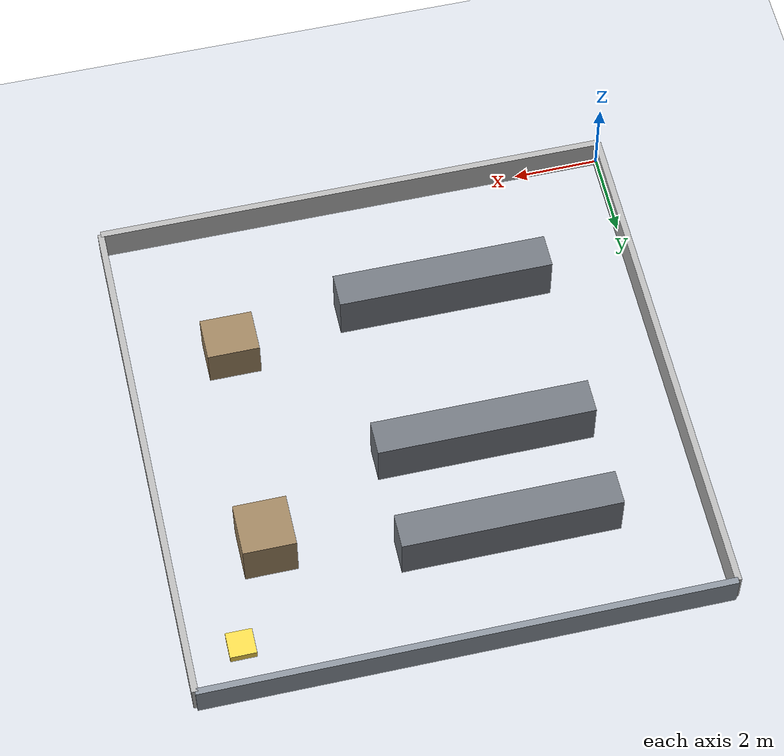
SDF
<?xml version="1.0" ?>
<sdf version="1.9">
  <world name="warehouse">

    <physics name="1ms" type="ignored">
      <max_step_size>0.001</max_step_size>
      <real_time_factor>1.0</real_time_factor>
    </physics>

    <plugin filename="gz-sim-physics-system" name="gz::sim::systems::Physics"/>
    <plugin filename="gz-sim-user-commands-system" name="gz::sim::systems::UserCommands"/>
    <plugin filename="gz-sim-scene-broadcaster-system" name="gz::sim::systems::SceneBroadcaster"/>
    <plugin filename="gz-sim-sensors-system" name="gz::sim::systems::Sensors">
      <render_engine>ogre2</render_engine>
    </plugin>
    <plugin filename="gz-sim-contact-system" name="gz::sim::systems::Contact"/>

    <gravity>0 0 -9.81</gravity>

    <light type="directional" name="sun">
      <cast_shadows>true</cast_shadows>
      <pose>0 0 10 0 0 0</pose>
      <diffuse>0.9 0.9 0.9 1</diffuse>
      <specular>0.2 0.2 0.2 1</specular>
      <attenuation>
        <range>1000</range>
        <constant>0.9</constant>
        <linear>0.01</linear>
        <quadratic>0.001</quadratic>
      </attenuation>
      <direction>-0.5 0.1 -0.9</direction>
    </light>

    <model name="ground_plane">
      <static>true</static>
      <link name="link">
        <collision name="collision">
          <geometry>
            <plane>
              <normal>0 0 1</normal>
              <size>12 12</size>
            </plane>
          </geometry>
        </collision>
        <visual name="visual">
          <geometry>
            <plane>
              <normal>0 0 1</normal>
              <size>12 12</size>
            </plane>
          </geometry>
          <material>
            <ambient>0.85 0.87 0.9 1</ambient>
            <diffuse>0.85 0.87 0.9 1</diffuse>
          </material>
        </visual>
      </link>
    </model>

    <!-- Boundary walls: inner 12x12 m area, 0.15 m thick, 0.8 m high -->
    <model name="wall_north">
      <static>true</static>
      <pose>6 12 0.4 0 0 0</pose>
      <link name="link">
        <collision name="collision"><geometry><box><size>12 0.15 0.8</size></box></geometry></collision>
        <visual name="visual">
          <geometry><box><size>12 0.15 0.8</size></box></geometry>
          <material><ambient>0.55 0.58 0.62 1</ambient><diffuse>0.55 0.58 0.62 1</diffuse></material>
        </visual>
      </link>
    </model>
    <model name="wall_south">
      <static>true</static>
      <pose>6 0 0.4 0 0 0</pose>
      <link name="link">
        <collision name="collision"><geometry><box><size>12 0.15 0.8</size></box></geometry></collision>
        <visual name="visual"><geometry><box><size>12 0.15 0.8</size></box></geometry></visual>
      </link>
    </model>
    <model name="wall_east">
      <static>true</static>
      <pose>12 6 0.4 0 0 0</pose>
      <link name="link">
        <collision name="collision"><geometry><box><size>0.15 12 0.8</size></box></geometry></collision>
        <visual name="visual"><geometry><box><size>0.15 12 0.8</size></box></geometry></visual>
      </link>
    </model>
    <model name="wall_west">
      <static>true</static>
      <pose>0 6 0.4 0 0 0</pose>
      <link name="link">
        <collision name="collision"><geometry><box><size>0.15 12 0.8</size></box></geometry></collision>
        <visual name="visual"><geometry><box><size>0.15 12 0.8</size></box></geometry></visual>
      </link>
    </model>

    <!-- Shelf rows (2D sim: y = 3.0 / 7.0 / 9.4, x in [2.0, 7.0], 0.8 m deep) -->
    <model name="shelf_row_1">
      <static>true</static>
      <pose>4.5 3.0 0.6 0 0 0</pose>
      <link name="link">
        <collision name="collision"><geometry><box><size>5.0 0.8 1.2</size></box></geometry></collision>
        <visual name="visual">
          <geometry><box><size>5.0 0.8 1.2</size></box></geometry>
          <material><ambient>0.45 0.47 0.5 1</ambient><diffuse>0.45 0.47 0.5 1</diffuse></material>
        </visual>
      </link>
    </model>
    <model name="shelf_row_2">
      <static>true</static>
      <pose>4.5 7.0 0.6 0 0 0</pose>
      <link name="link">
        <collision name="collision"><geometry><box><size>5.0 0.8 1.2</size></box></geometry></collision>
        <visual name="visual">
          <geometry><box><size>5.0 0.8 1.2</size></box></geometry>
          <material><ambient>0.45 0.47 0.5 1</ambient><diffuse>0.45 0.47 0.5 1</diffuse></material>
        </visual>
      </link>
    </model>
    <model name="shelf_row_3">
      <static>true</static>
      <pose>4.5 9.4 0.6 0 0 0</pose>
      <link name="link">
        <collision name="collision"><geometry><box><size>5.0 0.8 1.2</size></box></geometry></collision>
        <visual name="visual">
          <geometry><box><size>5.0 0.8 1.2</size></box></geometry>
          <material><ambient>0.45 0.47 0.5 1</ambient><diffuse>0.45 0.47 0.5 1</diffuse></material>
        </visual>
      </link>
    </model>

    <!-- Crate stacks (2D sim: (9.0,3.0)-(10.2,4.0) and (9.2,8.0)-(10.4,9.2)) -->
    <model name="crate_stack_east_south">
      <static>true</static>
      <pose>9.6 3.5 0.5 0 0 0</pose>
      <link name="link">
        <collision name="collision"><geometry><box><size>1.2 1.0 1.0</size></box></geometry></collision>
        <visual name="visual">
          <geometry><box><size>1.2 1.0 1.0</size></box></geometry>
          <material><ambient>0.62 0.52 0.38 1</ambient><diffuse>0.62 0.52 0.38 1</diffuse></material>
        </visual>
      </link>
    </model>
    <model name="crate_stack_east_north">
      <static>true</static>
      <pose>9.8 8.6 0.6 0 0 0</pose>
      <link name="link">
        <collision name="collision"><geometry><box><size>1.2 1.2 1.2</size></box></geometry></collision>
        <visual name="visual">
          <geometry><box><size>1.2 1.2 1.2</size></box></geometry>
          <material><ambient>0.62 0.52 0.38 1</ambient><diffuse>0.62 0.52 0.38 1</diffuse></material>
        </visual>
      </link>
    </model>

    <!-- Charging dock (2D sim dock: 10.8, 10.8) -->
    <model name="charging_dock">
      <static>true</static>
      <pose>10.8 10.8 0.1 0 0 0</pose>
      <link name="link">
        <collision name="collision"><geometry><box><size>0.6 0.6 0.2</size></box></geometry></collision>
        <visual name="visual">
          <geometry><box><size>0.6 0.6 0.2</size></box></geometry>
          <material>
            <ambient>1.0 0.85 0.3 1</ambient>
            <diffuse>1.0 0.85 0.3 1</diffuse>
          </material>
        </visual>
      </link>
    </model>

  </world>
</sdf>
